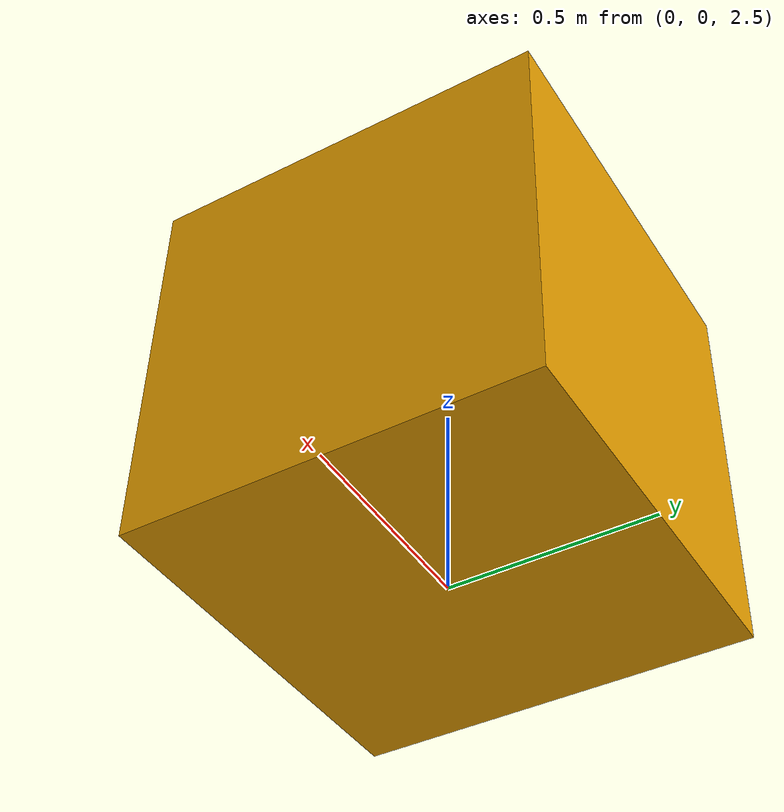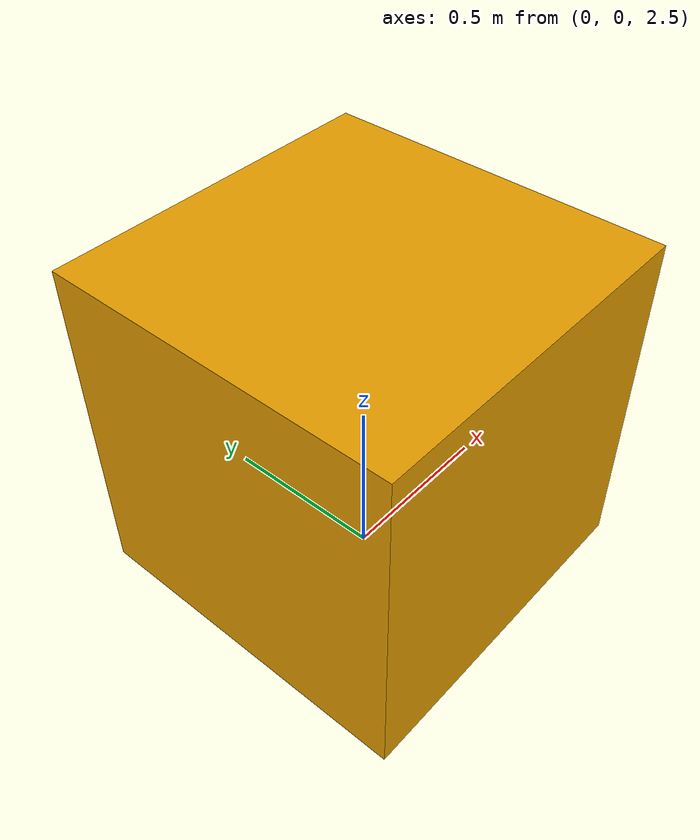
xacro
<?xml version="1.0"?>
<robot name="box" xmlns:xacro="http://www.ros.org/wiki/xacro">

<link name="box">
    <visual>
        <origin xyz="0 0 3" rpy="0 0 0"/>
      <geometry>
        <box size="1 1 1"/>
      </geometry>
    </visual>

    <collision name="box">
        <origin xyz="0 0 3" rpy="0 0 0"/>
      <geometry>
        <box size="1 1 1"/>
      </geometry>
    </collision>

    <inertial>
        <origin xyz="0 0 3" rpy="0 0 0"/>
        <mass value="1"/>
        <inertia ixx="0.083"  ixy="0"  ixz="0" iyy="0.083" iyz="0" izz="0.083"/>
    </inertial>
</link>

<gazebo reference="box">
    <mu1 value="200" />
    <mu2 value="100" />
    <selfCollide>true</selfCollide>
</gazebo>

</robot>
